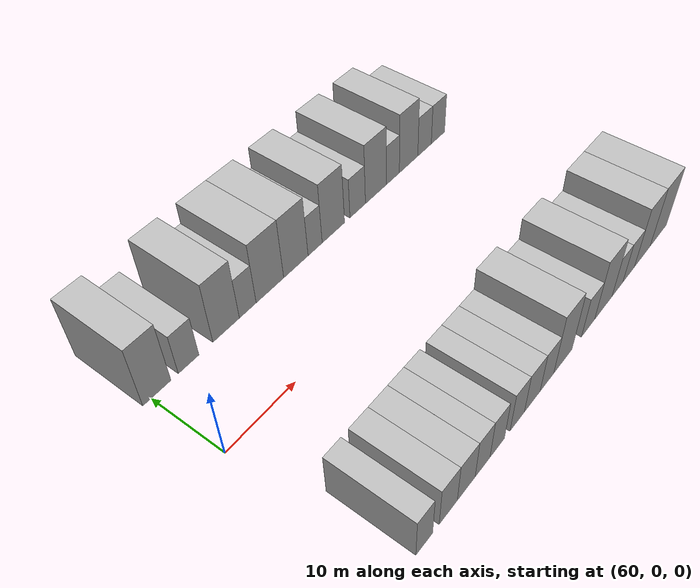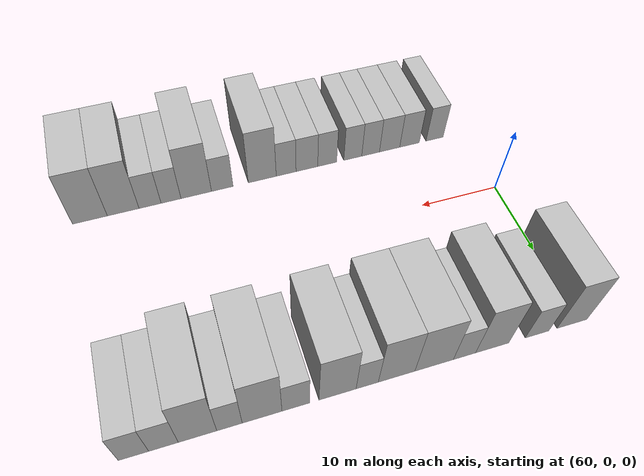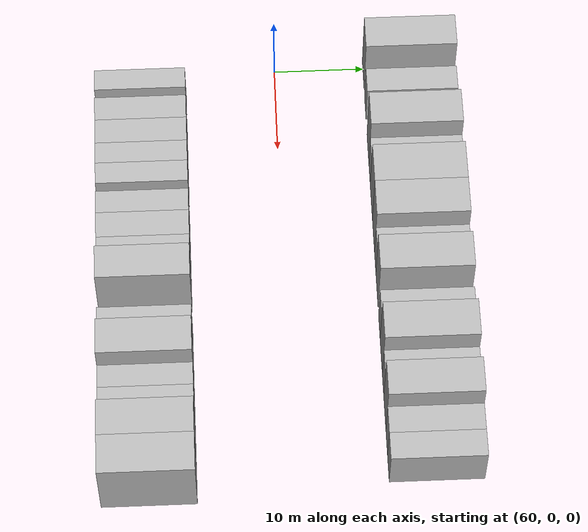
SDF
<sdf version="1.6">
 <world name="default">
  <model name="building_15">
   <static>1</static>
   <pose>60.7979 15.0000 0 0.000000 0.000000 1.570796</pose>
   <link name="link">
    <pose>0 0 4.50 0 0 0</pose>
    <collision name="collision"><geometry><box><size>10.0000 3.7398 9.0000</size></box></geometry></collision>
    <visual name="visual">
     <cast_shadows>0</cast_shadows>
     <geometry><box><size>10.0000 3.7398 9.0000</size></box></geometry>
     <material>
      <script>
       <uri>model://HANNAS_wall/materials/scripts</uri>
       <uri>model://HANNAS_wall/materials/textures</uri>
       <name>vrc/HANNAS_wall</name>
      </script>
     </material>
    </visual>
   </link>
  </model>
  <model name="building_16">
   <static>1</static>
   <pose>65.1097 15.0000 0 0.000000 0.000000 1.570796</pose>
   <link name="link">
    <pose>0 0 3.00 0 0 0</pose>
    <collision name="collision"><geometry><box><size>10.0000 2.8838 6.0000</size></box></geometry></collision>
    <visual name="visual">
     <cast_shadows>0</cast_shadows>
     <geometry><box><size>10.0000 2.8838 6.0000</size></box></geometry>
     <material>
      <script>
       <uri>model://HANNAS_wall/materials/scripts</uri>
       <uri>model://HANNAS_wall/materials/textures</uri>
       <name>vrc/HANNAS_wall</name>
      </script>
     </material>
    </visual>
   </link>
  </model>
  <model name="building_17">
   <static>1</static>
   <pose>70.5278 15.0000 0 0.000000 0.000000 1.570796</pose>
   <link name="link">
    <pose>0 0 4.50 0 0 0</pose>
    <collision name="collision"><geometry><box><size>10.0000 3.9525 9.0000</size></box></geometry></collision>
    <visual name="visual">
     <cast_shadows>0</cast_shadows>
     <geometry><box><size>10.0000 3.9525 9.0000</size></box></geometry>
     <material>
      <script>
       <uri>model://HANNAS_wall/materials/scripts</uri>
       <uri>model://HANNAS_wall/materials/textures</uri>
       <name>vrc/HANNAS_wall</name>
      </script>
     </material>
    </visual>
   </link>
  </model>
  <model name="building_18">
   <static>1</static>
   <pose>73.7992 15.0000 0 0.000000 0.000000 1.570796</pose>
   <link name="link">
    <pose>0 0 3.00 0 0 0</pose>
    <collision name="collision"><geometry><box><size>10.0000 2.5903 6.0000</size></box></geometry></collision>
    <visual name="visual">
     <cast_shadows>0</cast_shadows>
     <geometry><box><size>10.0000 2.5903 6.0000</size></box></geometry>
     <material>
      <script>
       <uri>model://HANNAS_wall/materials/scripts</uri>
       <uri>model://HANNAS_wall/materials/textures</uri>
       <name>vrc/HANNAS_wall</name>
      </script>
     </material>
    </visual>
   </link>
  </model>
  <model name="building_19">
   <static>1</static>
   <pose>77.3071 15.0000 0 0.000000 0.000000 1.570796</pose>
   <link name="link">
    <pose>0 0 4.50 0 0 0</pose>
    <collision name="collision"><geometry><box><size>10.0000 4.4255 9.0000</size></box></geometry></collision>
    <visual name="visual">
     <cast_shadows>0</cast_shadows>
     <geometry><box><size>10.0000 4.4255 9.0000</size></box></geometry>
     <material>
      <script>
       <uri>model://HANNAS_wall/materials/scripts</uri>
       <uri>model://HANNAS_wall/materials/textures</uri>
       <name>vrc/HANNAS_wall</name>
      </script>
     </material>
    </visual>
   </link>
  </model>
  <model name="building_20">
   <static>1</static>
   <pose>81.5744 15.0000 0 0.000000 0.000000 1.570796</pose>
   <link name="link">
    <pose>0 0 4.50 0 0 0</pose>
    <collision name="collision"><geometry><box><size>10.0000 4.1091 9.0000</size></box></geometry></collision>
    <visual name="visual">
     <cast_shadows>0</cast_shadows>
     <geometry><box><size>10.0000 4.1091 9.0000</size></box></geometry>
     <material>
      <script>
       <uri>model://HANNAS_wall/materials/scripts</uri>
       <uri>model://HANNAS_wall/materials/textures</uri>
       <name>vrc/HANNAS_wall</name>
      </script>
     </material>
    </visual>
   </link>
  </model>
  <model name="building_21">
   <static>1</static>
   <pose>84.8576 15.0000 0 0.000000 0.000000 1.570796</pose>
   <link name="link">
    <pose>0 0 3.00 0 0 0</pose>
    <collision name="collision"><geometry><box><size>10.0000 2.4574 6.0000</size></box></geometry></collision>
    <visual name="visual">
     <cast_shadows>0</cast_shadows>
     <geometry><box><size>10.0000 2.4574 6.0000</size></box></geometry>
     <material>
      <script>
       <uri>model://HANNAS_wall/materials/scripts</uri>
       <uri>model://HANNAS_wall/materials/textures</uri>
       <name>vrc/HANNAS_wall</name>
      </script>
     </material>
    </visual>
   </link>
  </model>
  <model name="building_22">
   <static>1</static>
   <pose>88.1054 15.0000 0 0.000000 0.000000 1.570796</pose>
   <link name="link">
    <pose>0 0 4.50 0 0 0</pose>
    <collision name="collision"><geometry><box><size>10.0000 4.0382 9.0000</size></box></geometry></collision>
    <visual name="visual">
     <cast_shadows>0</cast_shadows>
     <geometry><box><size>10.0000 4.0382 9.0000</size></box></geometry>
     <material>
      <script>
       <uri>model://HANNAS_wall/materials/scripts</uri>
       <uri>model://HANNAS_wall/materials/textures</uri>
       <name>vrc/HANNAS_wall</name>
      </script>
     </material>
    </visual>
   </link>
  </model>
  <model name="building_23">
   <static>1</static>
   <pose>92.5916 15.0000 0 0.000000 0.000000 1.570796</pose>
   <link name="link">
    <pose>0 0 3.00 0 0 0</pose>
    <collision name="collision"><geometry><box><size>10.0000 2.9342 6.0000</size></box></geometry></collision>
    <visual name="visual">
     <cast_shadows>0</cast_shadows>
     <geometry><box><size>10.0000 2.9342 6.0000</size></box></geometry>
     <material>
      <script>
       <uri>model://HANNAS_wall/materials/scripts</uri>
       <uri>model://HANNAS_wall/materials/textures</uri>
       <name>vrc/HANNAS_wall</name>
      </script>
     </material>
    </visual>
   </link>
  </model>
  <model name="building_24">
   <static>1</static>
   <pose>96.1244 15.0000 0 0.000000 0.000000 1.570796</pose>
   <link name="link">
    <pose>0 0 4.50 0 0 0</pose>
    <collision name="collision"><geometry><box><size>10.0000 4.1314 9.0000</size></box></geometry></collision>
    <visual name="visual">
     <cast_shadows>0</cast_shadows>
     <geometry><box><size>10.0000 4.1314 9.0000</size></box></geometry>
     <material>
      <script>
       <uri>model://HANNAS_wall/materials/scripts</uri>
       <uri>model://HANNAS_wall/materials/textures</uri>
       <name>vrc/HANNAS_wall</name>
      </script>
     </material>
    </visual>
   </link>
  </model>
  <model name="building_25">
   <static>1</static>
   <pose>99.4918 15.0000 0 0.000000 0.000000 1.570796</pose>
   <link name="link">
    <pose>0 0 3.00 0 0 0</pose>
    <collision name="collision"><geometry><box><size>10.0000 2.6035 6.0000</size></box></geometry></collision>
    <visual name="visual">
     <cast_shadows>0</cast_shadows>
     <geometry><box><size>10.0000 2.6035 6.0000</size></box></geometry>
     <material>
      <script>
       <uri>model://HANNAS_wall/materials/scripts</uri>
       <uri>model://HANNAS_wall/materials/textures</uri>
       <name>vrc/HANNAS_wall</name>
      </script>
     </material>
    </visual>
   </link>
  </model>
  <model name="building_26">
   <static>1</static>
   <pose>102.7264 15.0000 0 0.000000 0.000000 1.570796</pose>
   <link name="link">
    <pose>0 0 4.50 0 0 0</pose>
    <collision name="collision"><geometry><box><size>10.0000 3.8657 9.0000</size></box></geometry></collision>
    <visual name="visual">
     <cast_shadows>0</cast_shadows>
     <geometry><box><size>10.0000 3.8657 9.0000</size></box></geometry>
     <material>
      <script>
       <uri>model://HANNAS_wall/materials/scripts</uri>
       <uri>model://HANNAS_wall/materials/textures</uri>
       <name>vrc/HANNAS_wall</name>
      </script>
     </material>
    </visual>
   </link>
  </model>
  <model name="building_27">
   <static>1</static>
   <pose>106.1207 15.0000 0 0.000000 0.000000 1.570796</pose>
   <link name="link">
    <pose>0 0 3.00 0 0 0</pose>
    <collision name="collision"><geometry><box><size>10.0000 2.9230 6.0000</size></box></geometry></collision>
    <visual name="visual">
     <cast_shadows>0</cast_shadows>
     <geometry><box><size>10.0000 2.9230 6.0000</size></box></geometry>
     <material>
      <script>
       <uri>model://HANNAS_wall/materials/scripts</uri>
       <uri>model://HANNAS_wall/materials/textures</uri>
       <name>vrc/HANNAS_wall</name>
      </script>
     </material>
    </visual>
   </link>
  </model>
  <model name="building_28">
   <static>1</static>
   <pose>109.0614 15.0000 0 0.000000 0.000000 1.570796</pose>
   <link name="link">
    <pose>0 0 3.00 0 0 0</pose>
    <collision name="collision"><geometry><box><size>10.0000 2.9583 6.0000</size></box></geometry></collision>
    <visual name="visual">
     <cast_shadows>0</cast_shadows>
     <geometry><box><size>10.0000 2.9583 6.0000</size></box></geometry>
     <material>
      <script>
       <uri>model://HANNAS_wall/materials/scripts</uri>
       <uri>model://HANNAS_wall/materials/textures</uri>
       <name>vrc/HANNAS_wall</name>
      </script>
     </material>
    </visual>
   </link>
  </model>
  <model name="building_72">
   <static>1</static>
   <pose>63.9483 -15.0000 0 0.000000 0.000000 1.570796</pose>
   <link name="link">
    <pose>0 0 3.00 0 0 0</pose>
    <collision name="collision"><geometry><box><size>10.0000 2.5024 6.0000</size></box></geometry></collision>
    <visual name="visual">
     <cast_shadows>0</cast_shadows>
     <geometry><box><size>10.0000 2.5024 6.0000</size></box></geometry>
     <material>
      <script>
       <uri>model://HANNAS_wall/materials/scripts</uri>
       <uri>model://HANNAS_wall/materials/textures</uri>
       <name>vrc/HANNAS_wall</name>
      </script>
     </material>
    </visual>
   </link>
  </model>
  <model name="building_73">
   <static>1</static>
   <pose>67.6168 -15.0000 0 0.000000 0.000000 1.570796</pose>
   <link name="link">
    <pose>0 0 3.00 0 0 0</pose>
    <collision name="collision"><geometry><box><size>10.0000 2.8345 6.0000</size></box></geometry></collision>
    <visual name="visual">
     <cast_shadows>0</cast_shadows>
     <geometry><box><size>10.0000 2.8345 6.0000</size></box></geometry>
     <material>
      <script>
       <uri>model://HANNAS_wall/materials/scripts</uri>
       <uri>model://HANNAS_wall/materials/textures</uri>
       <name>vrc/HANNAS_wall</name>
      </script>
     </material>
    </visual>
   </link>
  </model>
  <model name="building_74">
   <static>1</static>
   <pose>70.4877 -15.0000 0 0.000000 0.000000 1.570796</pose>
   <link name="link">
    <pose>0 0 3.00 0 0 0</pose>
    <collision name="collision"><geometry><box><size>10.0000 2.9074 6.0000</size></box></geometry></collision>
    <visual name="visual">
     <cast_shadows>0</cast_shadows>
     <geometry><box><size>10.0000 2.9074 6.0000</size></box></geometry>
     <material>
      <script>
       <uri>model://HANNAS_wall/materials/scripts</uri>
       <uri>model://HANNAS_wall/materials/textures</uri>
       <name>vrc/HANNAS_wall</name>
      </script>
     </material>
    </visual>
   </link>
  </model>
  <model name="building_75">
   <static>1</static>
   <pose>73.1978 -15.0000 0 0.000000 0.000000 1.570796</pose>
   <link name="link">
    <pose>0 0 3.00 0 0 0</pose>
    <collision name="collision"><geometry><box><size>10.0000 2.5127 6.0000</size></box></geometry></collision>
    <visual name="visual">
     <cast_shadows>0</cast_shadows>
     <geometry><box><size>10.0000 2.5127 6.0000</size></box></geometry>
     <material>
      <script>
       <uri>model://HANNAS_wall/materials/scripts</uri>
       <uri>model://HANNAS_wall/materials/textures</uri>
       <name>vrc/HANNAS_wall</name>
      </script>
     </material>
    </visual>
   </link>
  </model>
  <model name="building_76">
   <static>1</static>
   <pose>75.7167 -15.0000 0 0.000000 0.000000 1.570796</pose>
   <link name="link">
    <pose>0 0 3.00 0 0 0</pose>
    <collision name="collision"><geometry><box><size>10.0000 2.5252 6.0000</size></box></geometry></collision>
    <visual name="visual">
     <cast_shadows>0</cast_shadows>
     <geometry><box><size>10.0000 2.5252 6.0000</size></box></geometry>
     <material>
      <script>
       <uri>model://HANNAS_wall/materials/scripts</uri>
       <uri>model://HANNAS_wall/materials/textures</uri>
       <name>vrc/HANNAS_wall</name>
      </script>
     </material>
    </visual>
   </link>
  </model>
  <model name="building_77">
   <static>1</static>
   <pose>79.2878 -15.0000 0 0.000000 0.000000 1.570796</pose>
   <link name="link">
    <pose>0 0 3.00 0 0 0</pose>
    <collision name="collision"><geometry><box><size>10.0000 2.6170 6.0000</size></box></geometry></collision>
    <visual name="visual">
     <cast_shadows>0</cast_shadows>
     <geometry><box><size>10.0000 2.6170 6.0000</size></box></geometry>
     <material>
      <script>
       <uri>model://HANNAS_wall/materials/scripts</uri>
       <uri>model://HANNAS_wall/materials/textures</uri>
       <name>vrc/HANNAS_wall</name>
      </script>
     </material>
    </visual>
   </link>
  </model>
  <model name="building_78">
   <static>1</static>
   <pose>82.0816 -15.0000 0 0.000000 0.000000 1.570796</pose>
   <link name="link">
    <pose>0 0 3.00 0 0 0</pose>
    <collision name="collision"><geometry><box><size>10.0000 2.9705 6.0000</size></box></geometry></collision>
    <visual name="visual">
     <cast_shadows>0</cast_shadows>
     <geometry><box><size>10.0000 2.9705 6.0000</size></box></geometry>
     <material>
      <script>
       <uri>model://HANNAS_wall/materials/scripts</uri>
       <uri>model://HANNAS_wall/materials/textures</uri>
       <name>vrc/HANNAS_wall</name>
      </script>
     </material>
    </visual>
   </link>
  </model>
  <model name="building_79">
   <static>1</static>
   <pose>84.9033 -15.0000 0 0.000000 0.000000 1.570796</pose>
   <link name="link">
    <pose>0 0 3.00 0 0 0</pose>
    <collision name="collision"><geometry><box><size>10.0000 2.6730 6.0000</size></box></geometry></collision>
    <visual name="visual">
     <cast_shadows>0</cast_shadows>
     <geometry><box><size>10.0000 2.6730 6.0000</size></box></geometry>
     <material>
      <script>
       <uri>model://HANNAS_wall/materials/scripts</uri>
       <uri>model://HANNAS_wall/materials/textures</uri>
       <name>vrc/HANNAS_wall</name>
      </script>
     </material>
    </visual>
   </link>
  </model>
  <model name="building_80">
   <static>1</static>
   <pose>88.1082 -15.0000 0 0.000000 0.000000 1.570796</pose>
   <link name="link">
    <pose>0 0 4.50 0 0 0</pose>
    <collision name="collision"><geometry><box><size>10.0000 3.7370 9.0000</size></box></geometry></collision>
    <visual name="visual">
     <cast_shadows>0</cast_shadows>
     <geometry><box><size>10.0000 3.7370 9.0000</size></box></geometry>
     <material>
      <script>
       <uri>model://HANNAS_wall/materials/scripts</uri>
       <uri>model://HANNAS_wall/materials/textures</uri>
       <name>vrc/HANNAS_wall</name>
      </script>
     </material>
    </visual>
   </link>
  </model>
  <model name="building_81">
   <static>1</static>
   <pose>93.3863 -15.0000 0 0.000000 0.000000 1.570796</pose>
   <link name="link">
    <pose>0 0 3.00 0 0 0</pose>
    <collision name="collision"><geometry><box><size>10.0000 2.8192 6.0000</size></box></geometry></collision>
    <visual name="visual">
     <cast_shadows>0</cast_shadows>
     <geometry><box><size>10.0000 2.8192 6.0000</size></box></geometry>
     <material>
      <script>
       <uri>model://HANNAS_wall/materials/scripts</uri>
       <uri>model://HANNAS_wall/materials/textures</uri>
       <name>vrc/HANNAS_wall</name>
      </script>
     </material>
    </visual>
   </link>
  </model>
  <model name="building_82">
   <static>1</static>
   <pose>96.7603 -15.0000 0 0.000000 0.000000 1.570796</pose>
   <link name="link">
    <pose>0 0 4.50 0 0 0</pose>
    <collision name="collision"><geometry><box><size>10.0000 3.9289 9.0000</size></box></geometry></collision>
    <visual name="visual">
     <cast_shadows>0</cast_shadows>
     <geometry><box><size>10.0000 3.9289 9.0000</size></box></geometry>
     <material>
      <script>
       <uri>model://HANNAS_wall/materials/scripts</uri>
       <uri>model://HANNAS_wall/materials/textures</uri>
       <name>vrc/HANNAS_wall</name>
      </script>
     </material>
    </visual>
   </link>
  </model>
  <model name="building_83">
   <static>1</static>
   <pose>99.9871 -15.0000 0 0.000000 0.000000 1.570796</pose>
   <link name="link">
    <pose>0 0 3.00 0 0 0</pose>
    <collision name="collision"><geometry><box><size>10.0000 2.5247 6.0000</size></box></geometry></collision>
    <visual name="visual">
     <cast_shadows>0</cast_shadows>
     <geometry><box><size>10.0000 2.5247 6.0000</size></box></geometry>
     <material>
      <script>
       <uri>model://HANNAS_wall/materials/scripts</uri>
       <uri>model://HANNAS_wall/materials/textures</uri>
       <name>vrc/HANNAS_wall</name>
      </script>
     </material>
    </visual>
   </link>
  </model>
  <model name="building_84">
   <static>1</static>
   <pose>102.6329 -15.0000 0 0.000000 0.000000 1.570796</pose>
   <link name="link">
    <pose>0 0 3.00 0 0 0</pose>
    <collision name="collision"><geometry><box><size>10.0000 2.7668 6.0000</size></box></geometry></collision>
    <visual name="visual">
     <cast_shadows>0</cast_shadows>
     <geometry><box><size>10.0000 2.7668 6.0000</size></box></geometry>
     <material>
      <script>
       <uri>model://HANNAS_wall/materials/scripts</uri>
       <uri>model://HANNAS_wall/materials/textures</uri>
       <name>vrc/HANNAS_wall</name>
      </script>
     </material>
    </visual>
   </link>
  </model>
  <model name="building_85">
   <static>1</static>
   <pose>105.9797 -15.0000 0 0.000000 0.000000 1.570796</pose>
   <link name="link">
    <pose>0 0 4.50 0 0 0</pose>
    <collision name="collision"><geometry><box><size>10.0000 3.9270 9.0000</size></box></geometry></collision>
    <visual name="visual">
     <cast_shadows>0</cast_shadows>
     <geometry><box><size>10.0000 3.9270 9.0000</size></box></geometry>
     <material>
      <script>
       <uri>model://HANNAS_wall/materials/scripts</uri>
       <uri>model://HANNAS_wall/materials/textures</uri>
       <name>vrc/HANNAS_wall</name>
      </script>
     </material>
    </visual>
   </link>
  </model>
  <model name="building_86">
   <static>1</static>
   <pose>110.0636 -15.0000 0 0.000000 0.000000 1.570796</pose>
   <link name="link">
    <pose>0 0 4.50 0 0 0</pose>
    <collision name="collision"><geometry><box><size>10.0000 4.2408 9.0000</size></box></geometry></collision>
    <visual name="visual">
     <cast_shadows>0</cast_shadows>
     <geometry><box><size>10.0000 4.2408 9.0000</size></box></geometry>
     <material>
      <script>
       <uri>model://HANNAS_wall/materials/scripts</uri>
       <uri>model://HANNAS_wall/materials/textures</uri>
       <name>vrc/HANNAS_wall</name>
      </script>
     </material>
    </visual>
   </link>
  </model>
 </world>
</sdf>
